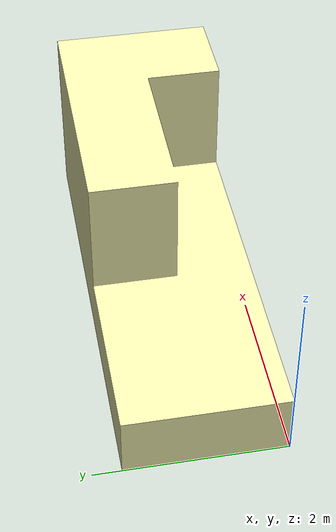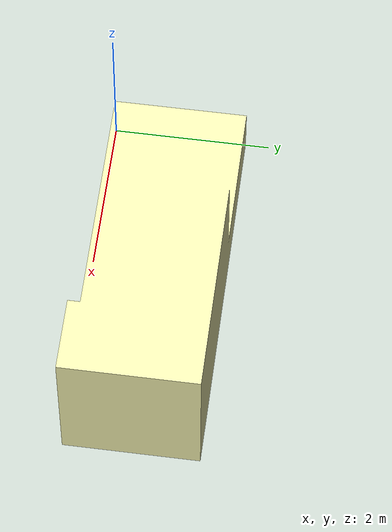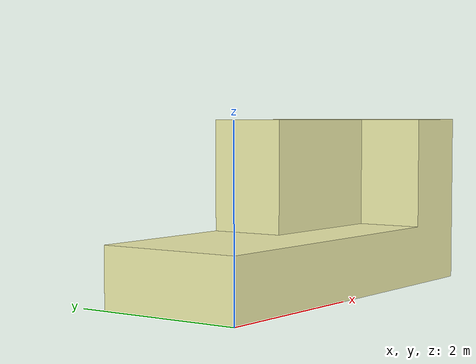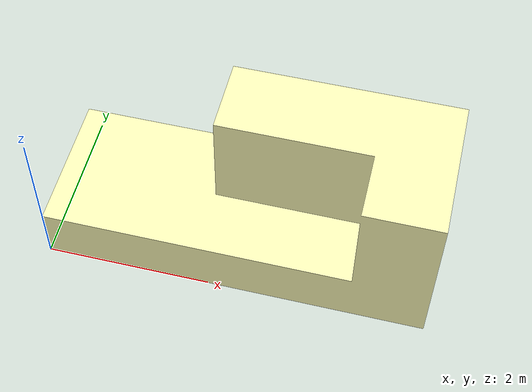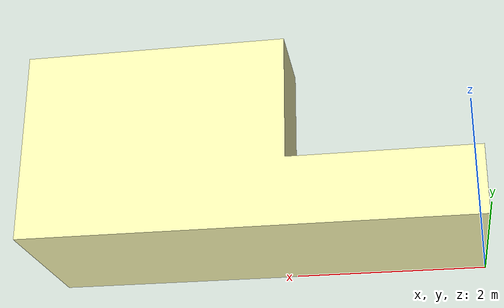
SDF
<?xml version="1.0" ?>
<sdf version="1.5">
  <model name="obstacle_10">
    <static>true</static>
    <link name="link">
      <pose>0 0 0 0 0 0</pose>
      <collision name="collision">
        <geometry>
            <mesh>
              <uri>
                model://obstacle_10/mesh/ostacolo_10.stl
              </uri>
              <scale>
                0.001 0.001 0.001
              </scale>
            </mesh>
        </geometry>
      </collision>
      <visual name="visual">
        <cast_shadows>true</cast_shadows>
        <geometry>
            <mesh>
              <uri>
                model://obstacle_10/mesh/ostacolo_10.stl
              </uri>
              <scale>
                0.001 0.001 0.001
              </scale>
            </mesh>
        </geometry>
        <material> <!-- color soft yellow -->
          <ambient>0.9725 0.9686 0.6980 1</ambient>
          <diffuse>0.9725 0.9686 0.6980 1</diffuse>
          <specular>0 0 0 0</specular>
          <emissive>0 0 0 1</emissive>
        </material>
      </visual>
    </link>
  </model>
</sdf>
